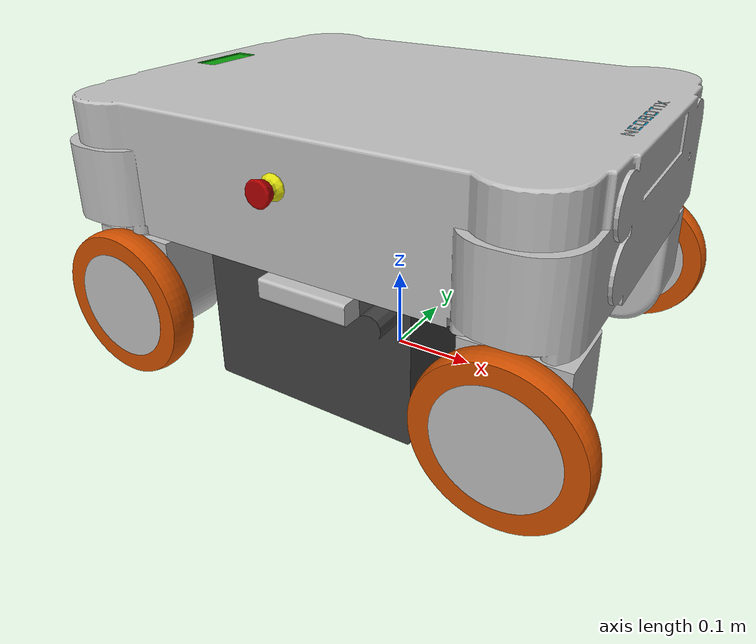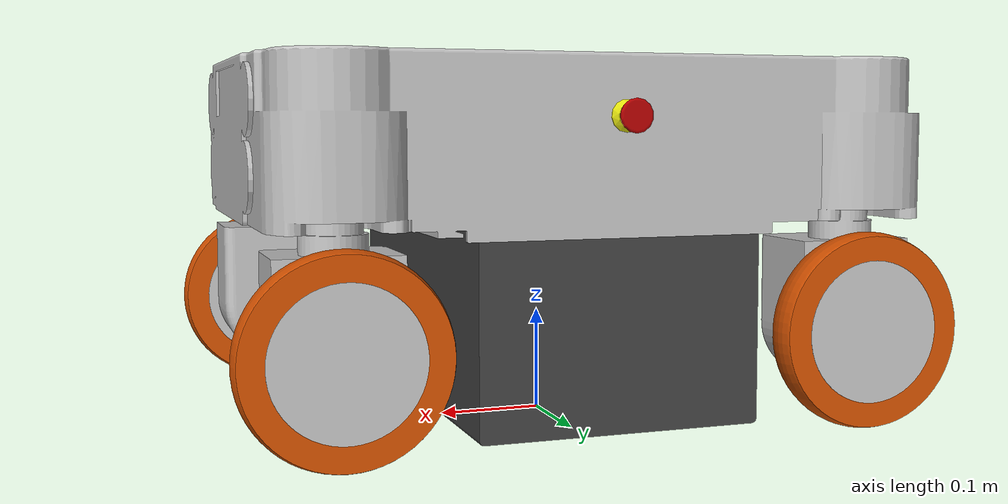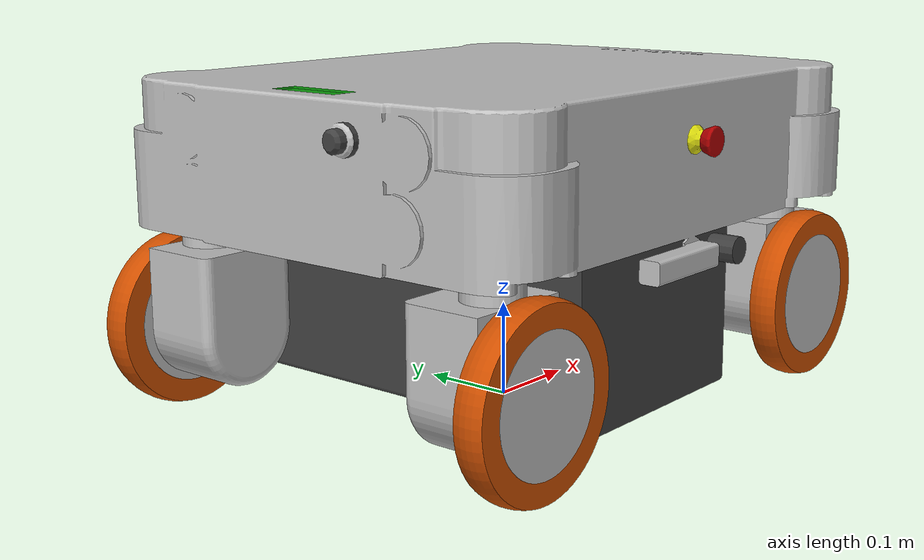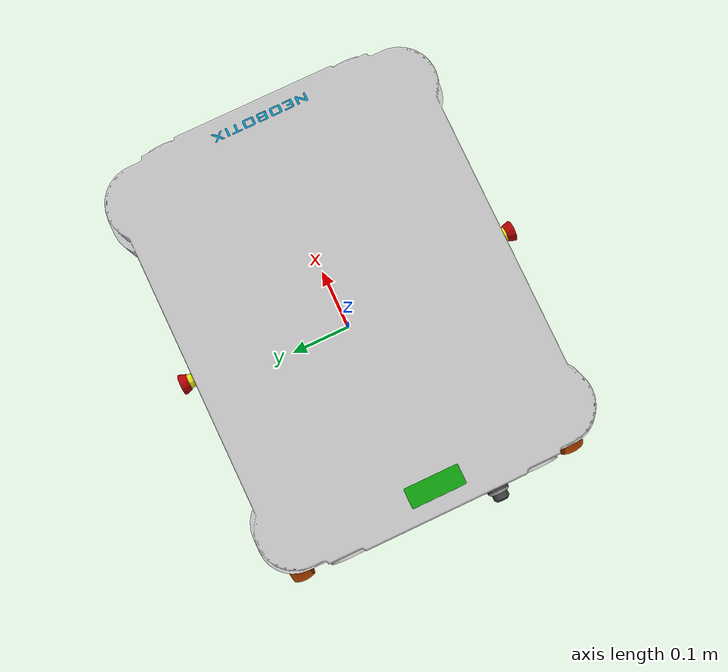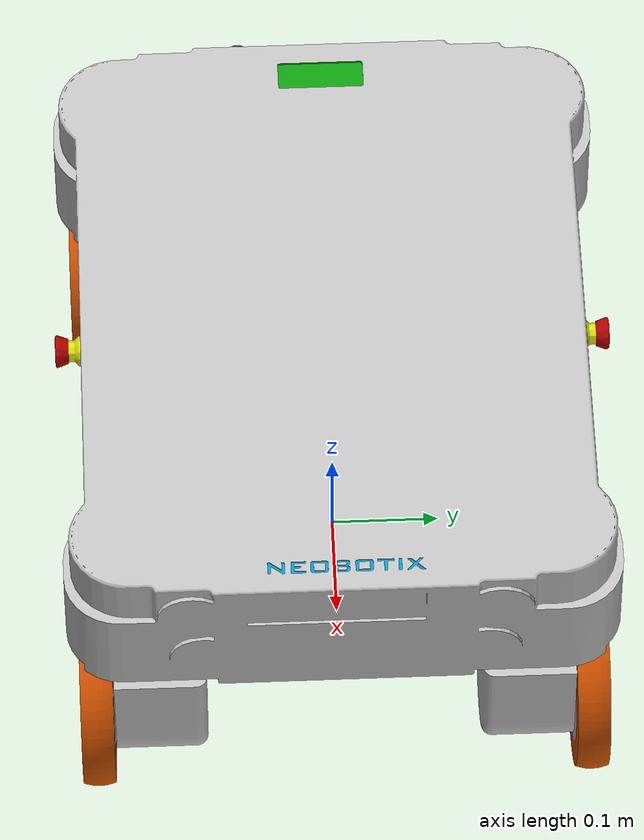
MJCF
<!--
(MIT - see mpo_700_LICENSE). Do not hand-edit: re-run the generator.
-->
<mujoco model="mpo_700">
  <compiler angle="radian" meshdir="meshes" autolimits="true"/>

  <default>
    <default class="mpo_700">
      <default class="visual">
        <geom type="mesh" contype="0" conaffinity="0" group="2"/>
      </default>
      <default class="collision">
        <geom type="mesh" group="3" rgba="0.6 0.1 0.1 0.35"/>
      </default>
      <default class="wheel_collision">
        <geom type="cylinder" group="3" rgba="0.05 0.05 0.05 0.4"
              friction="0.02 0.005 0.0001" priority="2"/>
      </default>
      <default class="steer">
        <joint axis="0 0 1" damping="30" armature="0.5"/>
      </default>
      <default class="roll">
        <joint axis="0 -1 0" damping="0.1" armature="0.05"/>
      </default>
    </default>
  </default>

  <asset>
    <material name="MPO-700-BODY__m0_mat" rgba="0.749 0.749 0.749 1"/>
    <material name="MPO-700-BODY__m1_mat" rgba="0 0.6 0.8 1"/>
    <material name="MPO-700-BODY__m2_mat" rgba="0.251 0.251 0.251 1"/>
    <material name="MPO-700-BODY__m3_mat" rgba="0.698 0 0 1"/>
    <material name="MPO-700-BODY__m4_mat" rgba="0.051 0.6157 0.051 1"/>
    <material name="MPO-700-BODY__m5_mat" rgba="0.8667 0.8667 0.051 1"/>
    <material name="MPO-700-HEAD_mat" rgba="0.749 0.749 0.749 1"/>
    <material name="MPO-700-WHEEL__m0_mat" rgba="0.749 0.749 0.749 1"/>
    <material name="MPO-700-WHEEL__m1_mat" rgba="0.8118 0.3098 0 1"/>
    <mesh file="MPO-700-BODY__m0.obj" scale="0.001 0.001 0.001" inertia="shell"/>
    <mesh file="MPO-700-BODY__m1.obj" scale="0.001 0.001 0.001" inertia="shell"/>
    <mesh file="MPO-700-BODY__m2.obj" scale="0.001 0.001 0.001" inertia="shell"/>
    <mesh file="MPO-700-BODY__m3.obj" scale="0.001 0.001 0.001" inertia="shell"/>
    <mesh file="MPO-700-BODY__m4.obj" scale="0.001 0.001 0.001" inertia="shell"/>
    <mesh file="MPO-700-BODY__m5.obj" scale="0.001 0.001 0.001" inertia="shell"/>
    <mesh file="MPO-700-HEAD.obj" scale="0.001 0.001 0.001" inertia="shell"/>
    <mesh file="MPO-700-WHEEL__m0.obj" scale="0.001 0.001 0.001" inertia="shell"/>
    <mesh file="MPO-700-WHEEL__m1.obj" scale="0.001 0.001 0.001" inertia="shell"/>
  </asset>

  <contact>
    <exclude body1="base_link" body2="mpo_700_wheel_front_left_link"/>
    <exclude body1="base_link" body2="mpo_700_wheel_front_right_link"/>
    <exclude body1="base_link" body2="mpo_700_wheel_back_left_link"/>
    <exclude body1="base_link" body2="mpo_700_wheel_back_right_link"/>
  </contact>

  <worldbody>
    <body name="base_link" childclass="mpo_700">
      <freejoint name="base_free"/>
      <inertial pos="0 0 0" mass="140" diaginertia="7.8 7.8 7.8"/>
      <site name="base_imu" pos="0 0 0" size="0.01" rgba="0 0 0 0"/>
        <geom class="visual" mesh="MPO-700-BODY__m0" material="MPO-700-BODY__m0_mat" pos="0 0 0" quat="0.7070348 0 0 -0.7071788"/>
        <geom class="visual" mesh="MPO-700-BODY__m1" material="MPO-700-BODY__m1_mat" pos="0 0 0" quat="0.7070348 0 0 -0.7071788"/>
        <geom class="visual" mesh="MPO-700-BODY__m2" material="MPO-700-BODY__m2_mat" pos="0 0 0" quat="0.7070348 0 0 -0.7071788"/>
        <geom class="visual" mesh="MPO-700-BODY__m3" material="MPO-700-BODY__m3_mat" pos="0 0 0" quat="0.7070348 0 0 -0.7071788"/>
        <geom class="visual" mesh="MPO-700-BODY__m4" material="MPO-700-BODY__m4_mat" pos="0 0 0" quat="0.7070348 0 0 -0.7071788"/>
        <geom class="visual" mesh="MPO-700-BODY__m5" material="MPO-700-BODY__m5_mat" pos="0 0 0" quat="0.7070348 0 0 -0.7071788"/>
        <geom class="collision" mesh="MPO-700-BODY__m0" name="base_link_collision" pos="0 0 0" quat="0.7070348 0 0 -0.7071788"/>
        <body name="mpo_700_caster_front_left_link" pos="0.24 0.18 0.22">
          <inertial pos="0 0 0" mass="12.7" diaginertia="0.27258101 0.27258101 0.27258101"/>
          <joint name="mpo_700_caster_front_left_joint" class="steer"/>
          <geom class="visual" mesh="MPO-700-HEAD" material="MPO-700-HEAD_mat" pos="0 0 0"/>
          <geom class="collision" mesh="MPO-700-HEAD" name="mpo_700_caster_front_left_link_collision" pos="0 0 0"/>
          <body name="mpo_700_wheel_front_left_link" pos="0.0 0.045 -0.12">
            <inertial pos="0 0 0" mass="1.2" diaginertia="0.11042056 0.11042056 0.11042056"/>
            <joint name="mpo_700_wheel_front_left_joint" class="roll"/>
            <geom class="visual" mesh="MPO-700-WHEEL__m0" material="MPO-700-WHEEL__m0_mat" pos="0 0 0" quat="0.0007963267 0 0 0.9999997"/>
            <geom class="visual" mesh="MPO-700-WHEEL__m1" material="MPO-700-WHEEL__m1_mat" pos="0 0 0" quat="0.0007963267 0 0 0.9999997"/>
            <geom class="wheel_collision" name="mpo_700_wheel_front_left_link_tyre" size="0.09 0.015" pos="0 0 0" quat="0.7071068 0.7071068 0 0"/>
          </body>
        </body>
        <body name="mpo_700_caster_front_right_link" pos="0.24 -0.18 0.22">
          <inertial pos="0 0 0" mass="12.7" diaginertia="0.27258101 0.27258101 0.27258101"/>
          <joint name="mpo_700_caster_front_right_joint" class="steer"/>
          <geom class="visual" mesh="MPO-700-HEAD" material="MPO-700-HEAD_mat" pos="0 0 0" quat="0.0007963267 0 0 0.9999997"/>
          <geom class="collision" mesh="MPO-700-HEAD" name="mpo_700_caster_front_right_link_collision" pos="0 0 0" quat="0.0007963267 0 0 0.9999997"/>
          <body name="mpo_700_wheel_front_right_link" pos="0.0 -0.045 -0.12" quat="0.0007963267 0 0 0.9999997">
            <inertial pos="0 0 0" mass="1.2" diaginertia="0.11042056 0.11042056 0.11042056"/>
            <joint name="mpo_700_wheel_front_right_joint" class="roll"/>
            <geom class="visual" mesh="MPO-700-WHEEL__m0" material="MPO-700-WHEEL__m0_mat" pos="0 0 0" quat="0.0007963267 0 0 0.9999997"/>
            <geom class="visual" mesh="MPO-700-WHEEL__m1" material="MPO-700-WHEEL__m1_mat" pos="0 0 0" quat="0.0007963267 0 0 0.9999997"/>
            <geom class="wheel_collision" name="mpo_700_wheel_front_right_link_tyre" size="0.09 0.015" pos="0 0 0" quat="0.7071068 0.7071068 0 0"/>
          </body>
        </body>
        <body name="mpo_700_caster_back_left_link" pos="-0.24 0.18 0.22">
          <inertial pos="0 0 0" mass="12.7" diaginertia="0.27258101 0.27258101 0.27258101"/>
          <joint name="mpo_700_caster_back_left_joint" class="steer"/>
          <geom class="visual" mesh="MPO-700-HEAD" material="MPO-700-HEAD_mat" pos="0 0 0"/>
          <geom class="collision" mesh="MPO-700-HEAD" name="mpo_700_caster_back_left_link_collision" pos="0 0 0"/>
          <body name="mpo_700_wheel_back_left_link" pos="0.0 0.045 -0.12">
            <inertial pos="0 0 0" mass="1.2" diaginertia="0.11042056 0.11042056 0.11042056"/>
            <joint name="mpo_700_wheel_back_left_joint" class="roll"/>
            <geom class="visual" mesh="MPO-700-WHEEL__m0" material="MPO-700-WHEEL__m0_mat" pos="0 0 0" quat="0.0007963267 0 0 0.9999997"/>
            <geom class="visual" mesh="MPO-700-WHEEL__m1" material="MPO-700-WHEEL__m1_mat" pos="0 0 0" quat="0.0007963267 0 0 0.9999997"/>
            <geom class="wheel_collision" name="mpo_700_wheel_back_left_link_tyre" size="0.09 0.015" pos="0 0 0" quat="0.7071068 0.7071068 0 0"/>
          </body>
        </body>
        <body name="mpo_700_caster_back_right_link" pos="-0.24 -0.18 0.22">
          <inertial pos="0 0 0" mass="12.7" diaginertia="0.27258101 0.27258101 0.27258101"/>
          <joint name="mpo_700_caster_back_right_joint" class="steer"/>
          <geom class="visual" mesh="MPO-700-HEAD" material="MPO-700-HEAD_mat" pos="0 0 0" quat="0.0007963267 0 0 0.9999997"/>
          <geom class="collision" mesh="MPO-700-HEAD" name="mpo_700_caster_back_right_link_collision" pos="0 0 0" quat="0.0007963267 0 0 0.9999997"/>
          <body name="mpo_700_wheel_back_right_link" pos="0.0 -0.045 -0.12" quat="0.0007963267 0 0 0.9999997">
            <inertial pos="0 0 0" mass="1.2" diaginertia="0.11042056 0.11042056 0.11042056"/>
            <joint name="mpo_700_wheel_back_right_joint" class="roll"/>
            <geom class="visual" mesh="MPO-700-WHEEL__m0" material="MPO-700-WHEEL__m0_mat" pos="0 0 0" quat="0.0007963267 0 0 0.9999997"/>
            <geom class="visual" mesh="MPO-700-WHEEL__m1" material="MPO-700-WHEEL__m1_mat" pos="0 0 0" quat="0.0007963267 0 0 0.9999997"/>
            <geom class="wheel_collision" name="mpo_700_wheel_back_right_link_tyre" size="0.09 0.015" pos="0 0 0" quat="0.7071068 0.7071068 0 0"/>
          </body>
        </body>
    </body>
  </worldbody>

  <actuator>
    <velocity name="base_vx" joint="base_free" gear="1 0 0 0 0 0" kv="25000" ctrlrange="-0.8 0.8" forcerange="-2500 2500"/>
    <velocity name="base_vy" joint="base_free" gear="0 1 0 0 0 0" kv="25000" ctrlrange="-0.5 0.5" forcerange="-2500 2500"/>
    <velocity name="base_wz" joint="base_free" gear="0 0 0 0 0 1" kv="12500" ctrlrange="-0.8 0.8" forcerange="-1500 1500"/>
    <position name="steer_front_left" joint="mpo_700_caster_front_left_joint" kp="800" kv="80" forcerange="-200 200"/>
    <position name="steer_front_right" joint="mpo_700_caster_front_right_joint" kp="800" kv="80" forcerange="-200 200"/>
    <position name="steer_back_left" joint="mpo_700_caster_back_left_joint" kp="800" kv="80" forcerange="-200 200"/>
    <position name="steer_back_right" joint="mpo_700_caster_back_right_joint" kp="800" kv="80" forcerange="-200 200"/>
    <!-- Observational roll servos: they make the wheels turn at the right rate for the commanded
         twist. They are not the motive force. -->
    <velocity name="wheel_front_left_motor" joint="mpo_700_wheel_front_left_joint" kv="5" ctrlrange="-30 30" forcerange="-10 10"/>
    <velocity name="wheel_front_right_motor" joint="mpo_700_wheel_front_right_joint" kv="5" ctrlrange="-30 30" forcerange="-10 10"/>
    <velocity name="wheel_back_left_motor" joint="mpo_700_wheel_back_left_joint" kv="5" ctrlrange="-30 30" forcerange="-10 10"/>
    <velocity name="wheel_back_right_motor" joint="mpo_700_wheel_back_right_joint" kv="5" ctrlrange="-30 30" forcerange="-10 10"/>
  </actuator>

  <keyframe>
    <!-- base_link rides at wheel radius minus the wheel-centre height, which is NEGATIVE here: the
         vendor's base_link frame sits a centimetre below the tyre contact. -->
    <key name="home" qpos="0 0 -0.01 1 0 0 0  0 0 0 0 0 0 0 0"/>
  </keyframe>
</mujoco>
